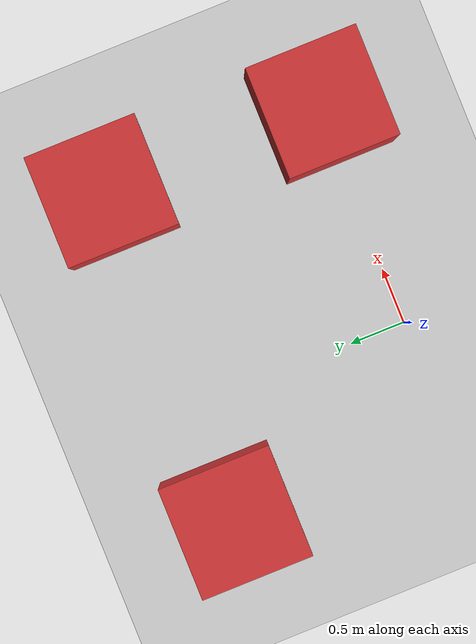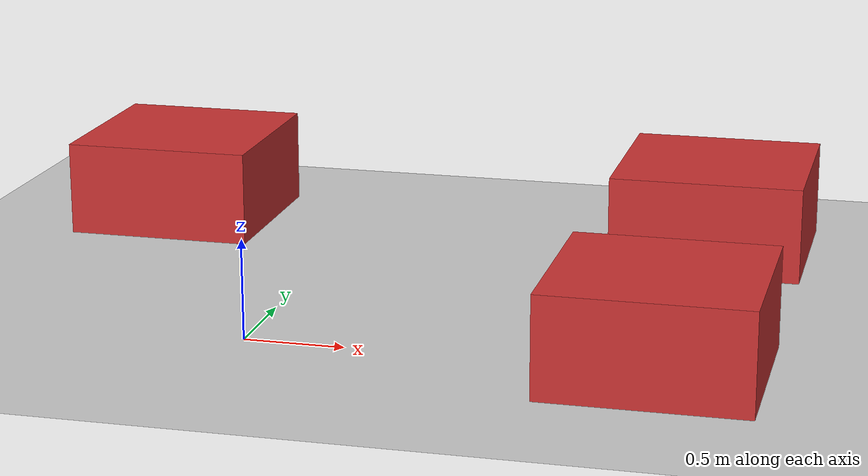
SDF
<?xml version="1.0" ?>
<!-- Gazebo Harmonic world: ground plane, lighting, and a few box obstacles
     arranged to form a simple maze for the pathfinding node to solve. -->
<sdf version="1.10">
  <world name="grid_world">

    <physics name="default" type="ignored">
      <max_step_size>0.004</max_step_size>
      <real_time_factor>1.0</real_time_factor>
    </physics>

    <plugin filename="gz-sim-physics-system"
            name="gz::sim::systems::Physics"/>
    <plugin filename="gz-sim-user-commands-system"
            name="gz::sim::systems::UserCommands"/>
    <plugin filename="gz-sim-scene-broadcaster-system"
            name="gz::sim::systems::SceneBroadcaster"/>
    <plugin filename="gz-sim-sensors-system"
            name="gz::sim::systems::Sensors">
      <render_engine>ogre2</render_engine>
    </plugin>

    <light type="directional" name="sun">
      <cast_shadows>true</cast_shadows>
      <pose>0 0 10 0 0 0</pose>
      <diffuse>0.8 0.8 0.8 1</diffuse>
      <specular>0.2 0.2 0.2 1</specular>
      <direction>-0.5 0.1 -0.9</direction>
    </light>

    <model name="ground_plane">
      <static>true</static>
      <link name="link">
        <collision name="collision">
          <geometry><plane><normal>0 0 1</normal><size>20 20</size></plane></geometry>
        </collision>
        <visual name="visual">
          <geometry><plane><normal>0 0 1</normal><size>20 20</size></plane></geometry>
          <material>
            <ambient>0.8 0.8 0.8 1</ambient>
            <diffuse>0.8 0.8 0.8 1</diffuse>
          </material>
        </visual>
      </link>
    </model>

    <!-- Obstacle boxes. Each is a 1x1x0.5 m static block. -->
    <model name="obstacle_1">
      <static>true</static>
      <pose>2 0 0.25 0 0 0</pose>
      <link name="link">
        <collision name="collision">
          <geometry><box><size>1 1 0.5</size></box></geometry>
        </collision>
        <visual name="visual">
          <geometry><box><size>1 1 0.5</size></box></geometry>
          <material><diffuse>0.8 0.2 0.2 1</diffuse></material>
        </visual>
      </link>
    </model>

    <model name="obstacle_2">
      <static>true</static>
      <pose>2 2 0.25 0 0 0</pose>
      <link name="link">
        <collision name="collision">
          <geometry><box><size>1 1 0.5</size></box></geometry>
        </collision>
        <visual name="visual">
          <geometry><box><size>1 1 0.5</size></box></geometry>
          <material><diffuse>0.8 0.2 0.2 1</diffuse></material>
        </visual>
      </link>
    </model>

    <model name="obstacle_3">
      <static>true</static>
      <pose>-1 2 0.25 0 0 0</pose>
      <link name="link">
        <collision name="collision">
          <geometry><box><size>1 1 0.5</size></box></geometry>
        </collision>
        <visual name="visual">
          <geometry><box><size>1 1 0.5</size></box></geometry>
          <material><diffuse>0.8 0.2 0.2 1</diffuse></material>
        </visual>
      </link>
    </model>

  </world>
</sdf>
